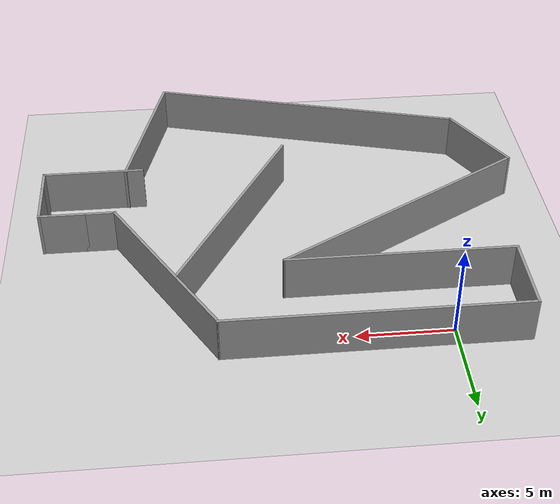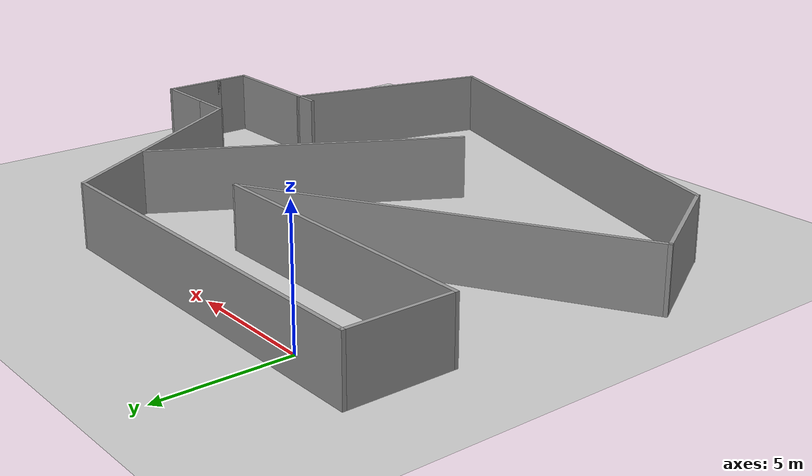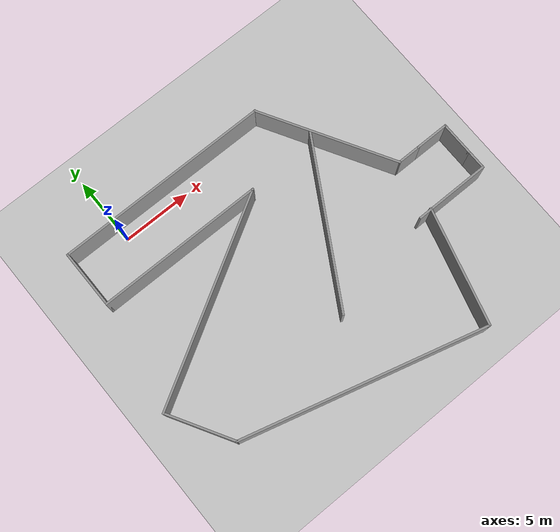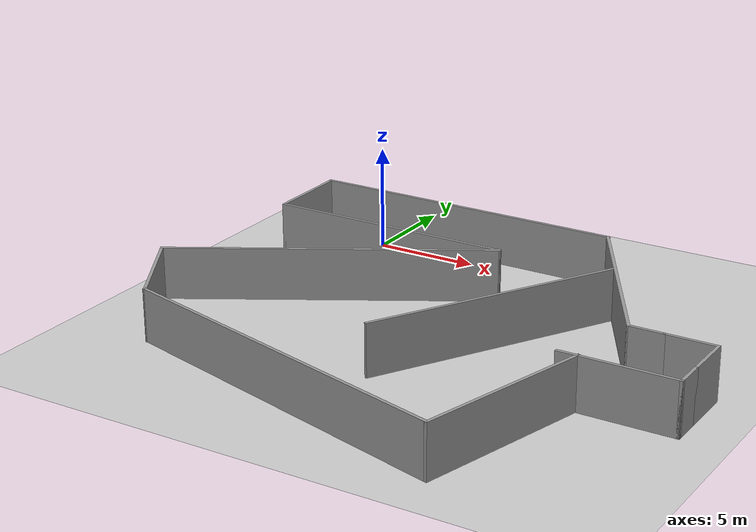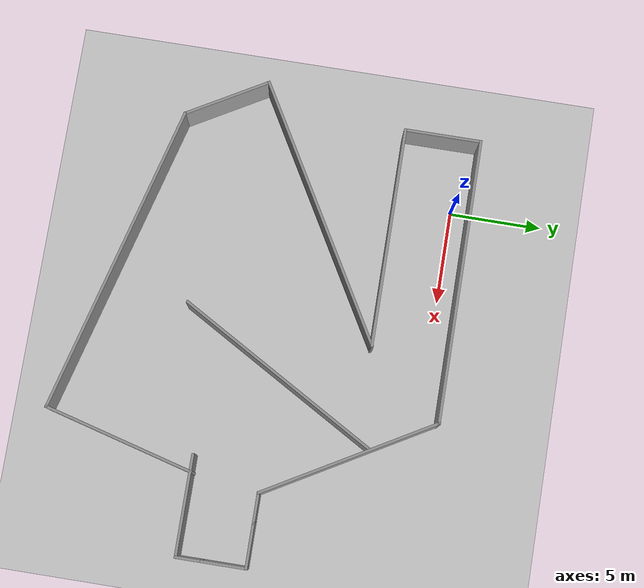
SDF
<sdf version="1.7">
 <world name="default">
  <model name="ground_plane">
   <static>1</static>
   <link name="link">
    <collision name="collision">
     <geometry><plane><normal>0 0 1</normal><size>100 100</size></plane></geometry>
     <surface>
      <contact><collide_bitmask>65535</collide_bitmask></contact>
      <friction><ode><mu>100</mu><mu2>50</mu2></ode></friction>
     </surface>
    </collision>
    <visual name="visual">
     <cast_shadows>0</cast_shadows>
     <geometry><plane><normal>0 0 1</normal><size>100 100</size></plane></geometry>
     <material>
      <script><uri>file://media/materials/scripts/gazebo.material</uri><name>Gazebo/Grey</name></script>
     </material>
    </visual>
   </link>
  </model>
  <light name="sun" type="directional">
   <pose>0 0 10 0 -0 0</pose>
   <diffuse>0.8 0.8 0.8 1</diffuse>
   <specular>0.2 0.2 0.2 1</specular>
   <attenuation>
    <range>1000</range>
    <constant>0.9</constant>
    <linear>0.01</linear>
    <quadratic>0.001</quadratic>
   </attenuation>
   <direction>-0.5 0.1 -0.9</direction>
   <spot><inner_angle>0</inner_angle><outer_angle>0</outer_angle><falloff>0</falloff></spot>
  </light>
  <scene><shadows>0</shadows><ambient>0.4 0.4 0.4 1</ambient><background>0.7 0.7 0.7 1</background></scene>
  <physics type="ode">
   <real_time_update_rate>1000</real_time_update_rate>
   <max_step_size>0.001</max_step_size>
   <real_time_factor>1</real_time_factor>
   <ode>
    <solver>
     <type>quick</type>
     <iters>150</iters>
     <precon_iters>0</precon_iters>
     <sor>1.4</sor>
     <use_dynamic_moi_rescaling>1</use_dynamic_moi_rescaling>
    </solver>
    <constraints>
     <cfm>1e-05</cfm>
     <erp>0.2</erp>
     <contact_max_correcting_vel>2000</contact_max_correcting_vel>
     <contact_surface_layer>0.01</contact_surface_layer>
    </constraints>
   </ode>
  </physics>
  <gravity>0 0 -9.8</gravity>
  <magnetic_field>6e-06 2.3e-05 -4.2e-05</magnetic_field>
  <atmosphere type="adiabatic"/>
  <audio><device>default</device></audio>
  <spherical_coordinates>
   <surface_model>EARTH_WGS84</surface_model>
   <latitude_deg>0</latitude_deg>
   <longitude_deg>0</longitude_deg>
   <elevation>0</elevation>
   <heading_deg>0</heading_deg>
  </spherical_coordinates>
  <model name="test_house">
   <pose>7.79153 -9.32443 0 0 -0 0</pose>
   <link name="Wall_0">
    <collision name="Wall_0_Collision">
     <geometry><box><size>5.5 0.15 2.5</size></box></geometry>
     <pose>0 0 1.25 0 -0 0</pose>
    </collision>
    <visual name="Wall_0_Visual">
     <pose>0 0 1.25 0 -0 0</pose>
     <geometry><box><size>5.5 0.15 2.5</size></box></geometry>
     <material>
      <script><uri>file://media/materials/scripts/gazebo.material</uri><name>Gazebo/Grey</name></script>
      <ambient>1 1 1 1</ambient>
     </material>
     <meta><layer>0</layer></meta>
    </visual>
    <pose>10.2355 -2.21929 0 0 -0 0</pose>
   </link>
   <link name="Wall_1">
    <collision name="Wall_1_Collision">
     <geometry><box><size>1.5 0.15 2.5</size></box></geometry>
     <pose>0 0 1.25 0 -0 0</pose>
    </collision>
    <visual name="Wall_1_Visual">
     <pose>0 0 1.25 0 -0 0</pose>
     <geometry><box><size>1.5 0.15 2.5</size></box></geometry>
     <material>
      <script><uri>file://media/materials/scripts/gazebo.material</uri><name>Gazebo/Grey</name></script>
      <ambient>1 1 1 1</ambient>
     </material>
     <meta><layer>0</layer></meta>
    </visual>
    <pose>12.9105 -1.54429 0 0 -0 1.5708</pose>
   </link>
   <link name="Wall_15">
    <collision name="Wall_15_Collision">
     <geometry><box><size>2.5 0.15 2.5</size></box></geometry>
     <pose>0 0 1.25 0 -0 0</pose>
    </collision>
    <visual name="Wall_15_Visual">
     <pose>0 0 1.25 0 -0 0</pose>
     <geometry><box><size>2.5 0.15 2.5</size></box></geometry>
     <material>
      <script><uri>file://media/materials/scripts/gazebo.material</uri><name>Gazebo/Grey</name></script>
      <ambient>1 1 1 1</ambient>
     </material>
     <meta><layer>0</layer></meta>
    </visual>
    <pose>11.7355 1.48071 0 0 -0 0</pose>
   </link>
   <link name="Wall_16">
    <collision name="Wall_16_Collision">
     <geometry><box><size>2.5 0.15 2.5</size></box></geometry>
     <pose>0 0 1.25 0 -0 0</pose>
    </collision>
    <visual name="Wall_16_Visual">
     <pose>0 0 1.25 0 -0 0</pose>
     <geometry><box><size>2.5 0.15 2.5</size></box></geometry>
     <material>
      <script><uri>file://media/materials/scripts/gazebo.material</uri><name>Gazebo/Grey</name></script>
      <ambient>1 1 1 1</ambient>
     </material>
     <meta><layer>0</layer></meta>
    </visual>
    <pose>12.9105 0.305712 0 0 -0 -1.5708</pose>
   </link>
   <link name="Wall_18">
    <collision name="Wall_18_Collision">
     <geometry><box><size>10.25 0.15 2.5</size></box></geometry>
     <pose>0 0 1.25 0 -0 0</pose>
    </collision>
    <visual name="Wall_18_Visual">
     <pose>0 0 1.25 0 -0 0</pose>
     <geometry><box><size>10.25 0.15 2.5</size></box></geometry>
     <material>
      <script><uri>file://media/materials/scripts/gazebo.material</uri><name>Gazebo/Grey</name></script>
      <ambient>1 1 1 1</ambient>
     </material>
     <meta><layer>0</layer></meta>
    </visual>
    <pose>6.43547 5.85414 0 0 -0 2.0944</pose>
   </link>
   <link name="Wall_19">
    <collision name="Wall_19_Collision">
     <geometry><box><size>15.5 0.15 2.5</size></box></geometry>
     <pose>0 0 1.25 0 -0 0</pose>
    </collision>
    <visual name="Wall_19_Visual">
     <pose>0 0 1.25 0 -0 0</pose>
     <geometry><box><size>15.5 0.15 2.5</size></box></geometry>
     <material>
      <script><uri>file://media/materials/scripts/gazebo.material</uri><name>Gazebo/Grey</name></script>
      <ambient>1 1 1 1</ambient>
     </material>
     <meta><layer>0</layer></meta>
    </visual>
    <pose>-3.76453 10.2276 0 0 -0 3.14159</pose>
   </link>
   <link name="Wall_21">
    <collision name="Wall_21_Collision">
     <geometry><box><size>4.25 0.15 2.5</size></box></geometry>
     <pose>0 0 1.25 0 -0 0</pose>
    </collision>
    <visual name="Wall_21_Visual">
     <pose>0 0 1.25 0 -0 0</pose>
     <geometry><box><size>4.25 0.15 2.5</size></box></geometry>
     <material>
      <script><uri>file://media/materials/scripts/gazebo.material</uri><name>Gazebo/Grey</name></script>
      <ambient>1 1 1 1</ambient>
     </material>
     <meta><layer>0</layer></meta>
    </visual>
    <pose>-11.4395 8.17757 0 0 -0 -1.5708</pose>
   </link>
   <link name="Wall_22">
    <collision name="Wall_22_Collision">
     <geometry><box><size>12 0.15 2.5</size></box></geometry>
     <pose>0 0 1.25 0 -0 0</pose>
    </collision>
    <visual name="Wall_22_Visual">
     <pose>0 0 1.25 0 -0 0</pose>
     <geometry><box><size>12 0.15 2.5</size></box></geometry>
     <material>
      <script><uri>file://media/materials/scripts/gazebo.material</uri><name>Gazebo/Grey</name></script>
      <ambient>1 1 1 1</ambient>
     </material>
     <meta><layer>0</layer></meta>
    </visual>
    <pose>-5.51453 6.12757 0 0 -0 0</pose>
   </link>
   <link name="Wall_23">
    <collision name="Wall_23_Collision">
     <geometry><box><size>15.5 0.15 2.5</size></box></geometry>
     <pose>0 0 1.25 0 -0 0</pose>
    </collision>
    <visual name="Wall_23_Visual">
     <pose>0 0 1.25 0 -0 0</pose>
     <geometry><box><size>15.5 0.15 2.5</size></box></geometry>
     <material>
      <script><uri>file://media/materials/scripts/gazebo.material</uri><name>Gazebo/Grey</name></script>
      <ambient>1 1 1 1</ambient>
     </material>
     <meta><layer>0</layer></meta>
    </visual>
    <pose>-6.23627 2.29007 0 0 -0 -2.61799</pose>
   </link>
   <link name="Wall_24">
    <collision name="Wall_24_Collision">
     <geometry><box><size>5 0.15 2.5</size></box></geometry>
     <pose>0 0 1.25 0 -0 0</pose>
    </collision>
    <visual name="Wall_24_Visual">
     <pose>0 0 1.25 0 -0 0</pose>
     <geometry><box><size>5 0.15 2.5</size></box></geometry>
     <material>
      <script><uri>file://media/materials/scripts/gazebo.material</uri><name>Gazebo/Grey</name></script>
      <ambient>1 1 1 1</ambient>
     </material>
     <meta><layer>0</layer></meta>
    </visual>
    <pose>-11.6705 -3.64754 0 0 -0 -1.0472</pose>
   </link>
   <link name="Wall_25">
    <collision name="Wall_25_Collision">
     <geometry><box><size>17.5 0.15 2.5</size></box></geometry>
     <pose>0 0 1.25 0 -0 0</pose>
    </collision>
    <visual name="Wall_25_Visual">
     <pose>0 0 1.25 0 -0 0</pose>
     <geometry><box><size>17.5 0.15 2.5</size></box></geometry>
     <material>
      <script><uri>file://media/materials/scripts/gazebo.material</uri><name>Gazebo/Grey</name></script>
      <ambient>1 1 1 1</ambient>
     </material>
     <meta><layer>0</layer></meta>
    </visual>
    <pose>-2.07861 -7.99291 0 0 -0 -0.261799</pose>
   </link>
   <link name="Wall_26">
    <collision name="Wall_26_Collision">
     <geometry><box><size>8.5 0.15 2.5</size></box></geometry>
     <pose>0 0 1.25 0 -0 0</pose>
    </collision>
    <visual name="Wall_26_Visual">
     <pose>0 0 1.25 0 -0 0</pose>
     <geometry><box><size>8.5 0.15 2.5</size></box></geometry>
     <material>
      <script><uri>file://media/materials/scripts/gazebo.material</uri><name>Gazebo/Grey</name></script>
      <ambient>1 1 1 1</ambient>
     </material>
     <meta><layer>0</layer></meta>
    </visual>
    <pose>7.38136 -6.20542 0 0 -0 1.309</pose>
   </link>
   <link name="Wall_29">
    <collision name="Wall_29_Collision">
     <geometry><box><size>12.5 0.15 2.5</size></box></geometry>
     <pose>0 0 1.25 0 -0 0</pose>
    </collision>
    <visual name="Wall_29_Visual">
     <pose>0 0 1.25 0 -0 0</pose>
     <geometry><box><size>12.5 0.15 2.5</size></box></geometry>
     <material>
      <script><uri>file://media/materials/scripts/gazebo.material</uri><name>Gazebo/Grey</name></script>
      <ambient>1 1 1 1</ambient>
     </material>
     <meta><layer>0</layer></meta>
    </visual>
    <pose>2.73534 1.48578 0 0 -0 -2.0944</pose>
   </link>
   <link name="Wall_4">
    <collision name="Wall_4_Collision">
     <geometry><box><size>1.75 0.15 2.5</size></box></geometry>
     <pose>0 0 1.25 0 -0 0</pose>
    </collision>
    <visual name="Wall_4_Visual">
     <pose>0 0 1.25 0 -0 0</pose>
     <geometry><box><size>1.75 0.15 2.5</size></box></geometry>
     <material>
      <script><uri>file://media/materials/scripts/gazebo.material</uri><name>Gazebo/Grey</name></script>
      <ambient>1 1 1 1</ambient>
     </material>
     <meta><layer>0</layer></meta>
    </visual>
    <pose>9.76047 1.48071 0 0 -0 3.14159</pose>
   </link>
   <static>1</static>
  </model>
 </world>
</sdf>
